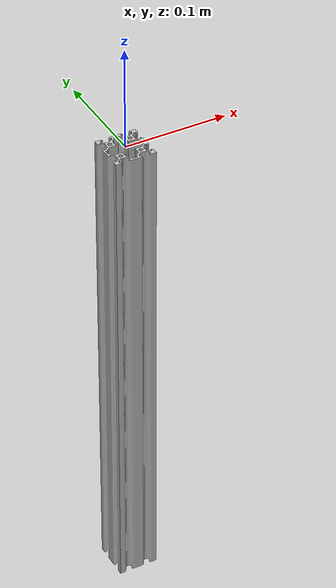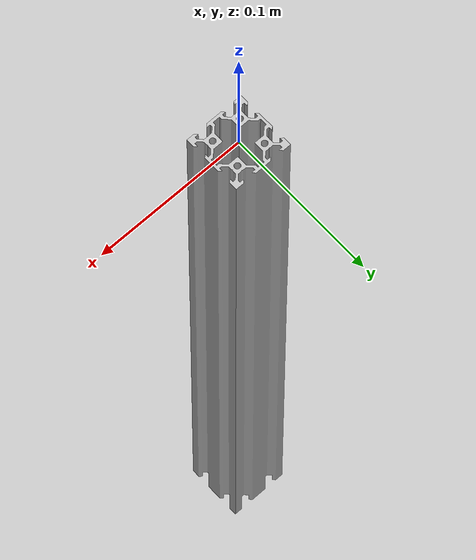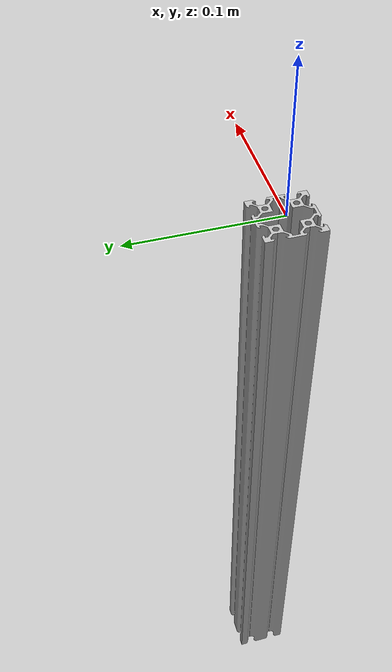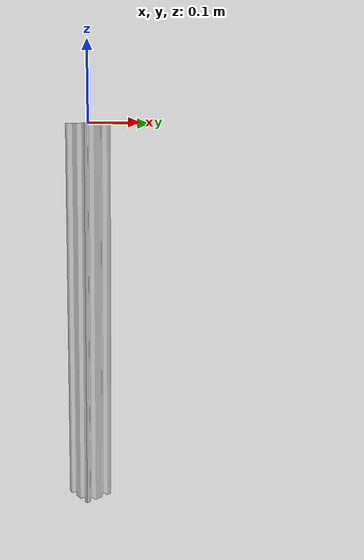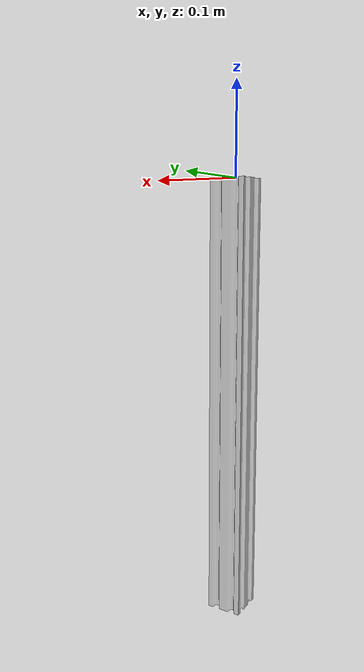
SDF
<sdf version='1.7'>
    <model name='side_extrusion_40'>
    <static>true</static>
      <link name='side_extrusion_40_link'>
        <inertial>
          <pose>0 0 0 0 0 0</pose>
          <mass>0.0615752</mass> <!-- Fix inertia parameters -->
        <inertia>
          <ixx>9.108e-05</ixx>
          <ixy>0</ixy>
          <ixz>0</ixz>
          <iyy>2.51e-06</iyy>
          <iyz>0</iyz>
          <izz>8.931e-05</izz>
        </inertia>
        </inertial>
        <collision name='side_extrusion_40_link_collision'>
          <pose>0 0 0 0 0 0</pose>
          <geometry>
            <mesh>
              <scale>.001 .001 .001 </scale>
              <uri>model://side_extrusion_40/meshes/side_extrusion_40.stl</uri>
            </mesh>
          </geometry>
        </collision>
        <visual name='side_extrusion_40_link_visual'>
          <pose>0 0 0 0 0 0</pose>
          <geometry>
            <mesh>
              <scale>.001 .001 .001 </scale>
              <uri>model://side_extrusion_40/meshes/side_extrusion_40.obj</uri>
            </mesh>
          </geometry>
          <material name="mount_black">
            <color rgba="0.18 0.18 0.18 1.0"/>
          </material>

          <cast_shadows>1</cast_shadows>
        </visual>
      </link>
    </model>
  </sdf>
